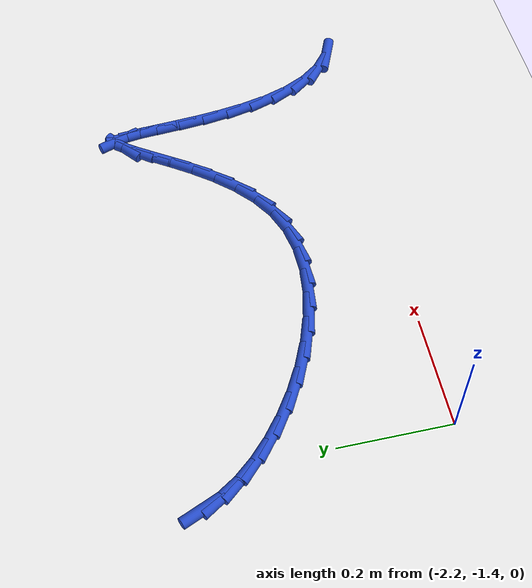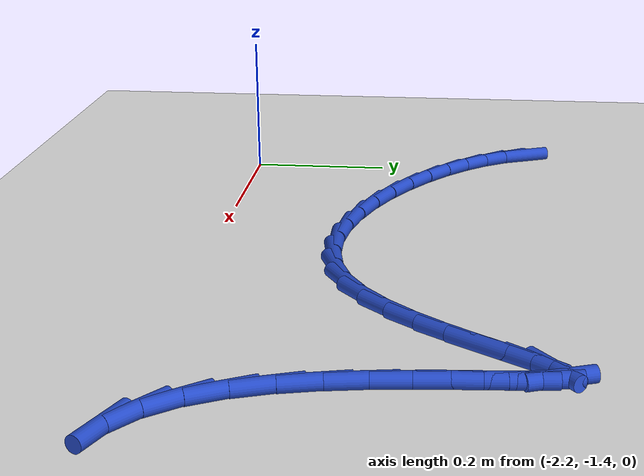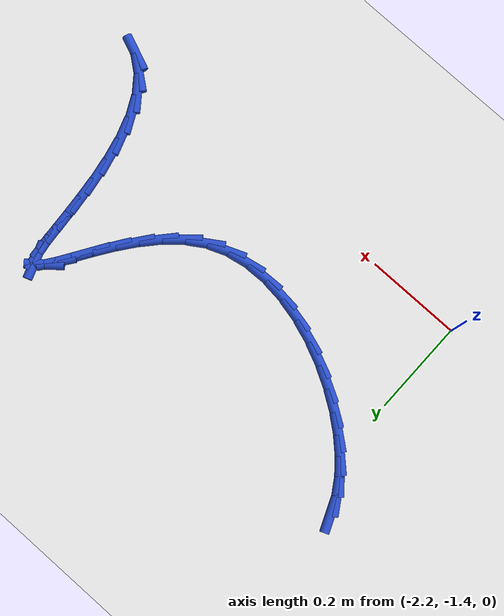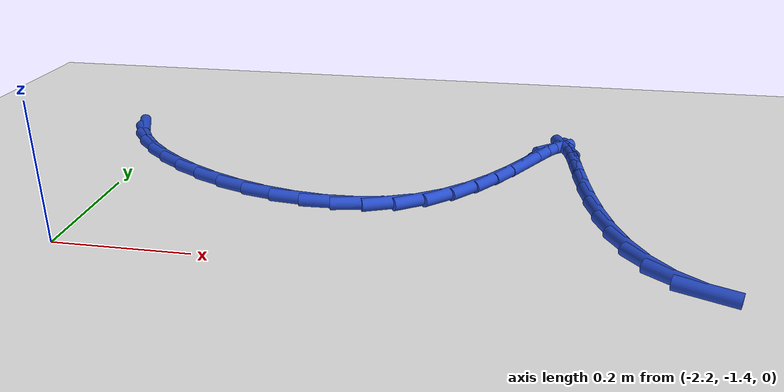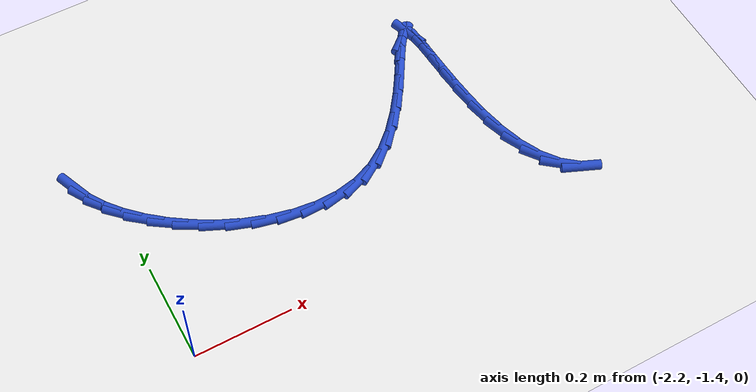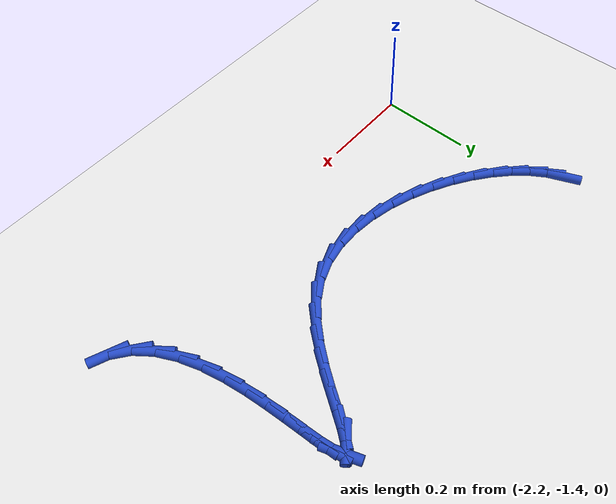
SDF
<sdf version="1.6">
 <world name="default">
  <model name="ground_plane">
   <static>1</static>
   <link name="link">
    <collision name="collision">
     <geometry><plane><normal>0 0 1</normal><size>100 100</size></plane></geometry>
     <surface><friction><ode><mu>100</mu><mu2>50</mu2></ode></friction></surface>
    </collision>
    <visual name="visual">
     <cast_shadows>0</cast_shadows>
     <geometry><plane><normal>0 0 1</normal><size>100 100</size></plane></geometry>
     <material>
      <script><uri>file://media/materials/scripts/gazebo.material</uri><name>Gazebo/WhiteGlow</name></script>
     </material>
    </visual>
   </link>
  </model>
  <model name="line">
   <link name="link_175">
    <pose>-2.258255400075873 -0.9722623268777841 0.01 0 1.57 -1.1738790824442633</pose>
    <collision name="collision">
     <geometry><cylinder><radius>0.01</radius><length>0.08</length></cylinder></geometry>
    </collision>
    <visual name="visual">
     <material>
      <script><name>Gazebo/Blue</name><uri>file://media/materials/scripts/gazebo.material</uri></script>
     </material>
     <geometry><cylinder><radius>0.01</radius><length>0.08</length></cylinder></geometry>
    </visual>
   </link>
   <link name="link_176">
    <pose>-2.2450130579737513 -1.0038545869684747 0.01 0 1.57 -1.0046622344971978</pose>
    <collision name="collision">
     <geometry><cylinder><radius>0.01</radius><length>0.08</length></cylinder></geometry>
    </collision>
    <visual name="visual">
     <material>
      <script><name>Gazebo/Blue</name><uri>file://media/materials/scripts/gazebo.material</uri></script>
     </material>
     <geometry><cylinder><radius>0.01</radius><length>0.08</length></cylinder></geometry>
    </visual>
   </link>
   <link name="link_177">
    <pose>-2.224600873112358 -1.0359730623709393 0.01 0 1.57 -0.8734539043969933</pose>
    <collision name="collision">
     <geometry><cylinder><radius>0.01</radius><length>0.08</length></cylinder></geometry>
    </collision>
    <visual name="visual">
     <material>
      <script><name>Gazebo/Blue</name><uri>file://media/materials/scripts/gazebo.material</uri></script>
     </material>
     <geometry><cylinder><radius>0.01</radius><length>0.08</length></cylinder></geometry>
    </visual>
   </link>
   <link name="link_178">
    <pose>-2.19784475219153 -1.0679109252051502 0.01 0 1.57 -0.7660758759200244</pose>
    <collision name="collision">
     <geometry><cylinder><radius>0.01</radius><length>0.08</length></cylinder></geometry>
    </collision>
    <visual name="visual">
     <material>
      <script><name>Gazebo/Blue</name><uri>file://media/materials/scripts/gazebo.material</uri></script>
     </material>
     <geometry><cylinder><radius>0.01</radius><length>0.08</length></cylinder></geometry>
    </visual>
   </link>
   <link name="link_179">
    <pose>-2.165570601911106 -1.0989613475910789 0.01 0 1.57 -0.6728102989075453</pose>
    <collision name="collision">
     <geometry><cylinder><radius>0.01</radius><length>0.08</length></cylinder></geometry>
    </collision>
    <visual name="visual">
     <material>
      <script><name>Gazebo/Blue</name><uri>file://media/materials/scripts/gazebo.material</uri></script>
     </material>
     <geometry><cylinder><radius>0.01</radius><length>0.08</length></cylinder></geometry>
    </visual>
   </link>
   <link name="link_180">
    <pose>-2.128604328970925 -1.1284175016486975 0.01 0 1.57 -0.586872537944083</pose>
    <collision name="collision">
     <geometry><cylinder><radius>0.01</radius><length>0.08</length></cylinder></geometry>
    </collision>
    <visual name="visual">
     <material>
      <script><name>Gazebo/Blue</name><uri>file://media/materials/scripts/gazebo.material</uri></script>
     </material>
     <geometry><cylinder><radius>0.01</radius><length>0.08</length></cylinder></geometry>
    </visual>
   </link>
   <link name="link_181">
    <pose>-2.087771840070824 -1.1555725594979789 0.01 0 1.57 -0.5031423125749547</pose>
    <collision name="collision">
     <geometry><cylinder><radius>0.01</radius><length>0.08</length></cylinder></geometry>
    </collision>
    <visual name="visual">
     <material>
      <script><name>Gazebo/Blue</name><uri>file://media/materials/scripts/gazebo.material</uri></script>
     </material>
     <geometry><cylinder><radius>0.01</radius><length>0.08</length></cylinder></geometry>
    </visual>
   </link>
   <link name="link_182">
    <pose>-2.043899041910645 -1.1797196932588938 0.01 0 1.57 -0.41730317466256917</pose>
    <collision name="collision">
     <geometry><cylinder><radius>0.01</radius><length>0.08</length></cylinder></geometry>
    </collision>
    <visual name="visual">
     <material>
      <script><name>Gazebo/Blue</name><uri>file://media/materials/scripts/gazebo.material</uri></script>
     </material>
     <geometry><cylinder><radius>0.01</radius><length>0.08</length></cylinder></geometry>
    </visual>
   </link>
   <link name="link_183">
    <pose>-1.9978118411902233 -1.2001520750514145 0.01 0 1.57 -0.32526427800437613</pose>
    <collision name="collision">
     <geometry><cylinder><radius>0.01</radius><length>0.08</length></cylinder></geometry>
    </collision>
    <visual name="visual">
     <material>
      <script><name>Gazebo/Blue</name><uri>file://media/materials/scripts/gazebo.material</uri></script>
     </material>
     <geometry><cylinder><radius>0.01</radius><length>0.08</length></cylinder></geometry>
    </visual>
   </link>
   <link name="link_184">
    <pose>-1.9503361446093994 -1.216162876995513 0.01 0 1.57 -0.2227758111728907</pose>
    <collision name="collision">
     <geometry><cylinder><radius>0.01</radius><length>0.08</length></cylinder></geometry>
    </collision>
    <visual name="visual">
     <material>
      <script><name>Gazebo/Blue</name><uri>file://media/materials/scripts/gazebo.material</uri></script>
     </material>
     <geometry><cylinder><radius>0.01</radius><length>0.08</length></cylinder></geometry>
    </visual>
   </link>
   <link name="link_185">
    <pose>-1.9022978588680108 -1.2270452712111617 0.01 0 1.57 -0.10525400351512292</pose>
    <collision name="collision">
     <geometry><cylinder><radius>0.01</radius><length>0.08</length></cylinder></geometry>
    </collision>
    <visual name="visual">
     <material>
      <script><name>Gazebo/Blue</name><uri>file://media/materials/scripts/gazebo.material</uri></script>
     </material>
     <geometry><cylinder><radius>0.01</radius><length>0.08</length></cylinder></geometry>
    </visual>
   </link>
   <link name="link_186">
    <pose>-1.8545228906658962 -1.232092429818332 0.01 0 1.57 0.03200964900566707</pose>
    <collision name="collision">
     <geometry><cylinder><radius>0.01</radius><length>0.08</length></cylinder></geometry>
    </collision>
    <visual name="visual">
     <material>
      <script><name>Gazebo/Blue</name><uri>file://media/materials/scripts/gazebo.material</uri></script>
     </material>
     <geometry><cylinder><radius>0.01</radius><length>0.08</length></cylinder></geometry>
    </visual>
   </link>
   <link name="link_187">
    <pose>-1.8078371467028944 -1.2305975249369967 0.01 0 1.57 0.19287432683393188</pose>
    <collision name="collision">
     <geometry><cylinder><radius>0.01</radius><length>0.08</length></cylinder></geometry>
    </collision>
    <visual name="visual">
     <material>
      <script><name>Gazebo/Blue</name><uri>file://media/materials/scripts/gazebo.material</uri></script>
     </material>
     <geometry><cylinder><radius>0.01</radius><length>0.08</length></cylinder></geometry>
    </visual>
   </link>
   <link name="link_188">
    <pose>-1.7630665336788438 -1.2218537286871272 0.01 0 1.57 0.378200569627861</pose>
    <collision name="collision">
     <geometry><cylinder><radius>0.01</radius><length>0.08</length></cylinder></geometry>
    </collision>
    <visual name="visual">
     <material>
      <script><name>Gazebo/Blue</name><uri>file://media/materials/scripts/gazebo.material</uri></script>
     </material>
     <geometry><cylinder><radius>0.01</radius><length>0.08</length></cylinder></geometry>
    </visual>
   </link>
   <link name="link_189">
    <pose>-1.721036958293583 -1.2051542131886959 0.01 0 1.57 0.5739315810056893</pose>
    <collision name="collision">
     <geometry><cylinder><radius>0.01</radius><length>0.08</length></cylinder></geometry>
    </collision>
    <visual name="visual">
     <material>
      <script><name>Gazebo/Blue</name><uri>file://media/materials/scripts/gazebo.material</uri></script>
     </material>
     <geometry><cylinder><radius>0.01</radius><length>0.08</length></cylinder></geometry>
    </visual>
   </link>
   <link name="link_190">
    <pose>-1.6824574225173636 -1.1802114079784949 0.01 0 1.57 0.7314446858495497</pose>
    <collision name="collision">
     <geometry><cylinder><radius>0.01</radius><length>0.08</length></cylinder></geometry>
    </collision>
    <visual name="visual">
     <material>
      <script><name>Gazebo/Blue</name><uri>file://media/materials/scripts/gazebo.material</uri></script>
     </material>
     <geometry><cylinder><radius>0.01</radius><length>0.08</length></cylinder></geometry>
    </visual>
   </link>
   <link name="link_191">
    <pose>-1.647461418458153 -1.1488017033849478 0.01 0 1.57 0.8452528377254861</pose>
    <collision name="collision">
     <geometry><cylinder><radius>0.01</radius><length>0.08</length></cylinder></geometry>
    </collision>
    <visual name="visual">
     <material>
      <script><name>Gazebo/Blue</name><uri>file://media/materials/scripts/gazebo.material</uri></script>
     </material>
     <geometry><cylinder><radius>0.01</radius><length>0.08</length></cylinder></geometry>
    </visual>
   </link>
   <link name="link_192">
    <pose>-1.616005640086218 -1.1133355438998318 0.01 0 1.57 0.9251446624786955</pose>
    <collision name="collision">
     <geometry><cylinder><radius>0.01</radius><length>0.08</length></cylinder></geometry>
    </collision>
    <visual name="visual">
     <material>
      <script><name>Gazebo/Blue</name><uri>file://media/materials/scripts/gazebo.material</uri></script>
     </material>
     <geometry><cylinder><radius>0.01</radius><length>0.08</length></cylinder></geometry>
    </visual>
   </link>
   <link name="link_193">
    <pose>-1.5880467337554778 -1.0762235447822415 0.01 0 1.57 0.9775947564457173</pose>
    <collision name="collision">
     <geometry><cylinder><radius>0.01</radius><length>0.08</length></cylinder></geometry>
    </collision>
    <visual name="visual">
     <material>
      <script><name>Gazebo/Blue</name><uri>file://media/materials/scripts/gazebo.material</uri></script>
     </material>
     <geometry><cylinder><radius>0.01</radius><length>0.08</length></cylinder></geometry>
    </visual>
   </link>
   <link name="link_194">
    <pose>-1.5635413458198522 -1.0398763212912705 0.01 0 1.57 1.0043702429016743</pose>
    <collision name="collision">
     <geometry><cylinder><radius>0.01</radius><length>0.08</length></cylinder></geometry>
    </collision>
    <visual name="visual">
     <material>
      <script><name>Gazebo/Blue</name><uri>file://media/materials/scripts/gazebo.material</uri></script>
     </material>
     <geometry><cylinder><radius>0.01</radius><length>0.08</length></cylinder></geometry>
    </visual>
   </link>
   <link name="link_195">
    <pose>-1.5424461226332626 -1.006704488686014 0.01 0 1.57 0.9995956641426965</pose>
    <collision name="collision">
     <geometry><cylinder><radius>0.01</radius><length>0.08</length></cylinder></geometry>
    </collision>
    <visual name="visual">
     <material>
      <script><name>Gazebo/Blue</name><uri>file://media/materials/scripts/gazebo.material</uri></script>
     </material>
     <geometry><cylinder><radius>0.01</radius><length>0.08</length></cylinder></geometry>
    </visual>
   </link>
   <link name="link_196">
    <pose>-1.5247177105496277 -0.9791186622255652 0.01 0 1.57 0.936736253293594</pose>
    <collision name="collision">
     <geometry><cylinder><radius>0.01</radius><length>0.08</length></cylinder></geometry>
    </collision>
    <visual name="visual">
     <material>
      <script><name>Gazebo/Blue</name><uri>file://media/materials/scripts/gazebo.material</uri></script>
     </material>
     <geometry><cylinder><radius>0.01</radius><length>0.08</length></cylinder></geometry>
    </visual>
   </link>
   <link name="link_197">
    <pose>-1.5103127559228682 -0.959529457169019 0.01 0 1.57 0.690012155732383</pose>
    <collision name="collision">
     <geometry><cylinder><radius>0.01</radius><length>0.08</length></cylinder></geometry>
    </collision>
    <visual name="visual">
     <material>
      <script><name>Gazebo/Blue</name><uri>file://media/materials/scripts/gazebo.material</uri></script>
     </material>
     <geometry><cylinder><radius>0.01</radius><length>0.08</length></cylinder></geometry>
    </visual>
   </link>
   <link name="link_199">
    <pose>-1.4912322404241911 -0.9536255053868489 0.01 0 1.57 -1.2280115922868169</pose>
    <collision name="collision">
     <geometry><cylinder><radius>0.01</radius><length>0.08</length></cylinder></geometry>
    </collision>
    <visual name="visual">
     <material>
      <script><name>Gazebo/Blue</name><uri>file://media/materials/scripts/gazebo.material</uri></script>
     </material>
     <geometry><cylinder><radius>0.01</radius><length>0.08</length></cylinder></geometry>
    </visual>
   </link>
   <link name="link_200">
    <pose>-1.4858325888253507 -0.9687559555131748 0.01 0 1.57 -1.4255390518719298</pose>
    <collision name="collision">
     <geometry><cylinder><radius>0.01</radius><length>0.08</length></cylinder></geometry>
    </collision>
    <visual name="visual">
     <material>
      <script><name>Gazebo/Blue</name><uri>file://media/materials/scripts/gazebo.material</uri></script>
     </material>
     <geometry><cylinder><radius>0.01</radius><length>0.08</length></cylinder></geometry>
    </visual>
   </link>
   <link name="link_201">
    <pose>-1.482149519205938 -0.9939328649105927 0.01 0 1.57 -1.4869801187485836</pose>
    <collision name="collision">
     <geometry><cylinder><radius>0.01</radius><length>0.08</length></cylinder></geometry>
    </collision>
    <visual name="visual">
     <material>
      <script><name>Gazebo/Blue</name><uri>file://media/materials/scripts/gazebo.material</uri></script>
     </material>
     <geometry><cylinder><radius>0.01</radius><length>0.08</length></cylinder></geometry>
    </visual>
   </link>
   <link name="link_202">
    <pose>-1.4793425084223648 -1.027344475123255 0.01 0 1.57 -1.5013336126699393</pose>
    <collision name="collision">
     <geometry><cylinder><radius>0.01</radius><length>0.08</length></cylinder></geometry>
    </collision>
    <visual name="visual">
     <material>
      <script><name>Gazebo/Blue</name><uri>file://media/materials/scripts/gazebo.material</uri></script>
     </material>
     <geometry><cylinder><radius>0.01</radius><length>0.08</length></cylinder></geometry>
    </visual>
   </link>
   <link name="link_203">
    <pose>-1.4765710333310456 -1.0671790276953137 0.01 0 1.57 -1.4905012670585382</pose>
    <collision name="collision">
     <geometry><cylinder><radius>0.01</radius><length>0.08</length></cylinder></geometry>
    </collision>
    <visual name="visual">
     <material>
      <script><name>Gazebo/Blue</name><uri>file://media/materials/scripts/gazebo.material</uri></script>
     </material>
     <geometry><cylinder><radius>0.01</radius><length>0.08</length></cylinder></geometry>
    </visual>
   </link>
   <link name="link_204">
    <pose>-1.4729945707883931 -1.1116247641709218 0.01 0 1.57 -1.4607138902783303</pose>
    <collision name="collision">
     <geometry><cylinder><radius>0.01</radius><length>0.08</length></cylinder></geometry>
    </collision>
    <visual name="visual">
     <material>
      <script><name>Gazebo/Blue</name><uri>file://media/materials/scripts/gazebo.material</uri></script>
     </material>
     <geometry><cylinder><radius>0.01</radius><length>0.08</length></cylinder></geometry>
    </visual>
   </link>
   <link name="link_205">
    <pose>-1.4677725976508194 -1.1588699260942308 0.01 0 1.57 -1.412327975409332</pose>
    <collision name="collision">
     <geometry><cylinder><radius>0.01</radius><length>0.08</length></cylinder></geometry>
    </collision>
    <visual name="visual">
     <material>
      <script><name>Gazebo/Blue</name><uri>file://media/materials/scripts/gazebo.material</uri></script>
     </material>
     <geometry><cylinder><radius>0.01</radius><length>0.08</length></cylinder></geometry>
    </visual>
   </link>
   <link name="link_206">
    <pose>-1.4600645907747383 -1.2071027550093933 0.01 0 1.57 -1.3421140748068445</pose>
    <collision name="collision">
     <geometry><cylinder><radius>0.01</radius><length>0.08</length></cylinder></geometry>
    </collision>
    <visual name="visual">
     <material>
      <script><name>Gazebo/Blue</name><uri>file://media/materials/scripts/gazebo.material</uri></script>
     </material>
     <geometry><cylinder><radius>0.01</radius><length>0.08</length></cylinder></geometry>
    </visual>
   </link>
   <link name="link_207">
    <pose>-1.4490300270165624 -1.2545114924605618 0.01 0 1.57 -1.2434810751870895</pose>
    <collision name="collision">
     <geometry><cylinder><radius>0.01</radius><length>0.08</length></cylinder></geometry>
    </collision>
    <visual name="visual">
     <material>
      <script><name>Gazebo/Blue</name><uri>file://media/materials/scripts/gazebo.material</uri></script>
     </material>
     <geometry><cylinder><radius>0.01</radius><length>0.08</length></cylinder></geometry>
    </visual>
   </link>
   <link name="link_208">
    <pose>-1.4338283832327041 -1.2992843799918894 0.01 0 1.57 -1.106224516881423</pose>
    <collision name="collision">
     <geometry><cylinder><radius>0.01</radius><length>0.08</length></cylinder></geometry>
    </collision>
    <visual name="visual">
     <material>
      <script><name>Gazebo/Blue</name><uri>file://media/materials/scripts/gazebo.material</uri></script>
     </material>
     <geometry><cylinder><radius>0.01</radius><length>0.08</length></cylinder></geometry>
    </visual>
   </link>
   <link name="link_209">
    <pose>-1.4136191362795778 -1.3396096591475255 0.01 0 1.57 -0.9178206079394554</pose>
    <collision name="collision">
     <geometry><cylinder><radius>0.01</radius><length>0.08</length></cylinder></geometry>
    </collision>
    <visual name="visual">
     <material>
      <script><name>Gazebo/Blue</name><uri>file://media/materials/scripts/gazebo.material</uri></script>
     </material>
     <geometry><cylinder><radius>0.01</radius><length>0.08</length></cylinder></geometry>
    </visual>
   </link>
   <link name="link_210">
    <pose>-1.387561763013596 -1.3736755714716242 0.01 0 1.57 -0.6709676289458186</pose>
    <collision name="collision">
     <geometry><cylinder><radius>0.01</radius><length>0.08</length></cylinder></geometry>
    </collision>
    <visual name="visual">
     <material>
      <script><name>Gazebo/Blue</name><uri>file://media/materials/scripts/gazebo.material</uri></script>
     </material>
     <geometry><cylinder><radius>0.01</radius><length>0.08</length></cylinder></geometry>
    </visual>
   </link>
   <link name="link_211">
    <pose>-1.354815740291171 -1.3996703585083372 0.01 0 1.57 -0.39395466617149266</pose>
    <collision name="collision">
     <geometry><cylinder><radius>0.01</radius><length>0.08</length></cylinder></geometry>
    </collision>
    <visual name="visual">
     <material>
      <script><name>Gazebo/Blue</name><uri>file://media/materials/scripts/gazebo.material</uri></script>
     </material>
     <geometry><cylinder><radius>0.01</radius><length>0.08</length></cylinder></geometry>
    </visual>
   </link>
  </model>
 </world>
</sdf>
